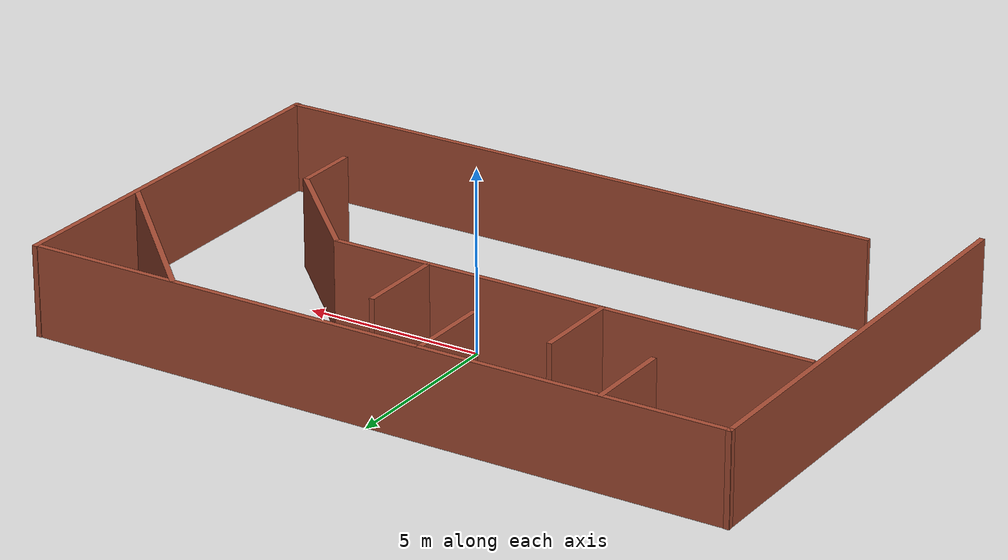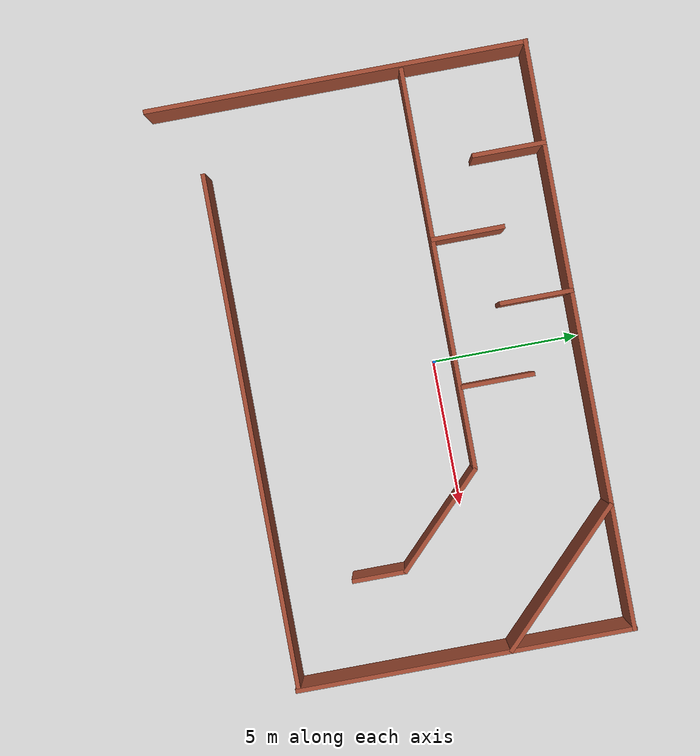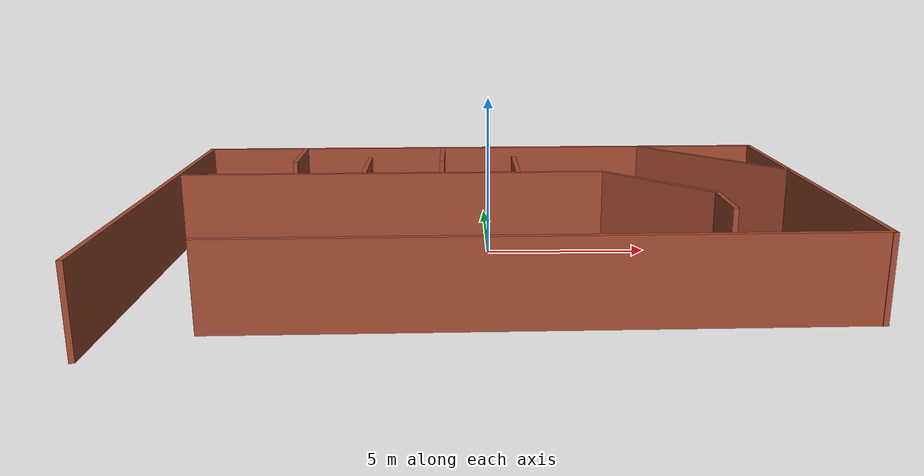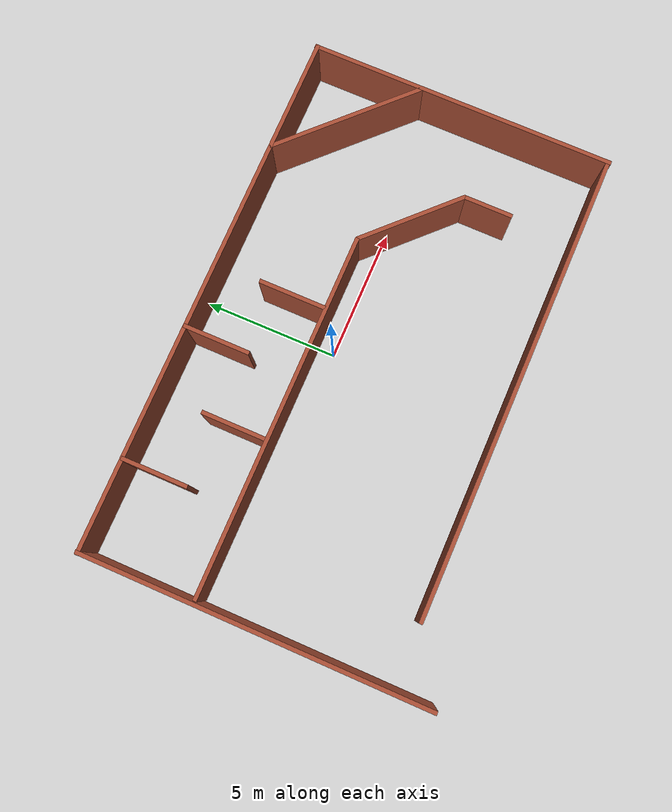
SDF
<?xml version='1.0'?>
<sdf version='1.6'>
  <model name='arena_walls'>
    <link name='Wall_10'>
      <pose frame=''>-6.5 3.71248 0 0 0 -1.5708</pose>
      <inertial>
        <mass>1</mass>
        <pose frame=''>0 0 0 0 -0 0</pose>
        <inertia>
          <ixx>1</ixx>
          <ixy>0</ixy>
          <ixz>0</ixz>
          <iyy>1</iyy>
          <iyz>0</iyz>
          <izz>1</izz>
        </inertia>
      </inertial>
      <self_collide>0</self_collide>
      <kinematic>0</kinematic>
      <gravity>1</gravity>
      <visual name='Wall_10_Visual'>
        <pose frame=''>0 0 1.25 0 -0 0</pose>
        <geometry>
          <box>
            <size>2.5 0.15 2.5</size>
          </box>
        </geometry>
        <material>
          <script>
            <uri>file://media/materials/scripts/gazebo.material</uri>
            <name>Gazebo/Bricks</name>
          </script>
          <ambient>1 1 1 1</ambient>
          <shader type='pixel'>
            <normal_map>__default__</normal_map>
          </shader>
          <diffuse>1 1 1 1</diffuse>
          <specular>0.2 0.2 0.2 1</specular>
          <emissive>0 0 0 1</emissive>
        </material>
        <meta>
          <layer>0</layer>
        </meta>
        <transparency>0</transparency>
        <cast_shadows>1</cast_shadows>
      </visual>
      <collision name='Wall_10_Collision'>
        <laser_retro>0</laser_retro>
        <max_contacts>10</max_contacts>
        <pose frame=''>0 0 1.25 0 -0 0</pose>
        <geometry>
          <box>
            <size>2.5 0.15 2.5</size>
          </box>
        </geometry>
        <surface>
          <friction>
            <ode>
              <mu>1</mu>
              <mu2>1</mu2>
              <fdir1>0 0 0</fdir1>
              <slip1>0</slip1>
              <slip2>0</slip2>
            </ode>
            <torsional>
              <coefficient>1</coefficient>
              <patch_radius>0</patch_radius>
              <surface_radius>0</surface_radius>
              <use_patch_radius>1</use_patch_radius>
              <ode>
                <slip>0</slip>
              </ode>
            </torsional>
          </friction>
          <bounce>
            <restitution_coefficient>0</restitution_coefficient>
            <threshold>1e+06</threshold>
          </bounce>
          <contact>
            <collide_without_contact>0</collide_without_contact>
            <collide_without_contact_bitmask>1</collide_without_contact_bitmask>
            <collide_bitmask>1</collide_bitmask>
            <ode>
              <soft_cfm>0</soft_cfm>
              <soft_erp>0.2</soft_erp>
              <kp>1e+13</kp>
              <kd>1</kd>
              <max_vel>0.01</max_vel>
              <min_depth>0</min_depth>
            </ode>
            <bullet>
              <split_impulse>1</split_impulse>
              <split_impulse_penetration_threshold>-0.01</split_impulse_penetration_threshold>
              <soft_cfm>0</soft_cfm>
              <soft_erp>0.2</soft_erp>
              <kp>1e+13</kp>
              <kd>1</kd>
            </bullet>
          </contact>
        </surface>
      </collision>
    </link>
    <link name='Wall_10_clone_0'>
      <pose frame=''>-1.5 3.70851 0 0 0 -1.5708</pose>
      <inertial>
        <mass>1</mass>
        <pose frame=''>0 0 0 0 -0 0</pose>
        <inertia>
          <ixx>1</ixx>
          <ixy>0</ixy>
          <ixz>0</ixz>
          <iyy>1</iyy>
          <iyz>0</iyz>
          <izz>1</izz>
        </inertia>
      </inertial>
      <self_collide>0</self_collide>
      <kinematic>0</kinematic>
      <gravity>1</gravity>
      <visual name='Wall_10_Visual'>
        <pose frame=''>0 0 1.25 0 -0 0</pose>
        <geometry>
          <box>
            <size>2.5 0.15 2.5</size>
          </box>
        </geometry>
        <material>
          <script>
            <uri>file://media/materials/scripts/gazebo.material</uri>
            <name>Gazebo/Bricks</name>
          </script>
          <ambient>1 1 1 1</ambient>
          <shader type='pixel'>
            <normal_map>__default__</normal_map>
          </shader>
          <diffuse>1 1 1 1</diffuse>
          <specular>0.2 0.2 0.2 1</specular>
          <emissive>0 0 0 1</emissive>
        </material>
        <meta>
          <layer>0</layer>
        </meta>
        <transparency>0</transparency>
        <cast_shadows>1</cast_shadows>
      </visual>
      <collision name='Wall_10_Collision'>
        <laser_retro>0</laser_retro>
        <max_contacts>10</max_contacts>
        <pose frame=''>0 0 1.25 0 -0 0</pose>
        <geometry>
          <box>
            <size>2.5 0.15 2.5</size>
          </box>
        </geometry>
        <surface>
          <friction>
            <ode>
              <mu>1</mu>
              <mu2>1</mu2>
              <fdir1>0 0 0</fdir1>
              <slip1>0</slip1>
              <slip2>0</slip2>
            </ode>
            <torsional>
              <coefficient>1</coefficient>
              <patch_radius>0</patch_radius>
              <surface_radius>0</surface_radius>
              <use_patch_radius>1</use_patch_radius>
              <ode>
                <slip>0</slip>
              </ode>
            </torsional>
          </friction>
          <bounce>
            <restitution_coefficient>0</restitution_coefficient>
            <threshold>1e+06</threshold>
          </bounce>
          <contact>
            <collide_without_contact>0</collide_without_contact>
            <collide_without_contact_bitmask>1</collide_without_contact_bitmask>
            <collide_bitmask>1</collide_bitmask>
            <ode>
              <soft_cfm>0</soft_cfm>
              <soft_erp>0.2</soft_erp>
              <kp>1e+13</kp>
              <kd>1</kd>
              <max_vel>0.01</max_vel>
              <min_depth>0</min_depth>
            </ode>
            <bullet>
              <split_impulse>1</split_impulse>
              <split_impulse_penetration_threshold>-0.01</split_impulse_penetration_threshold>
              <soft_cfm>0</soft_cfm>
              <soft_erp>0.2</soft_erp>
              <kp>1e+13</kp>
              <kd>1</kd>
            </bullet>
          </contact>
        </surface>
      </collision>
    </link>
    <link name='Wall_10_clone_0_clone'>
      <pose frame=''>-4 1.85792 0 0 0 -1.5708</pose>
      <inertial>
        <mass>1</mass>
        <pose frame=''>0 0 0 0 -0 0</pose>
        <inertia>
          <ixx>1</ixx>
          <ixy>0</ixy>
          <ixz>0</ixz>
          <iyy>1</iyy>
          <iyz>0</iyz>
          <izz>1</izz>
        </inertia>
      </inertial>
      <self_collide>0</self_collide>
      <kinematic>0</kinematic>
      <gravity>1</gravity>
      <visual name='Wall_10_Visual'>
        <pose frame=''>0 0 1.25 0 -0 0</pose>
        <geometry>
          <box>
            <size>2.5 0.15 2.5</size>
          </box>
        </geometry>
        <material>
          <script>
            <uri>file://media/materials/scripts/gazebo.material</uri>
            <name>Gazebo/Bricks</name>
          </script>
          <ambient>1 1 1 1</ambient>
          <shader type='pixel'>
            <normal_map>__default__</normal_map>
          </shader>
          <diffuse>1 1 1 1</diffuse>
          <specular>0.2 0.2 0.2 1</specular>
          <emissive>0 0 0 1</emissive>
        </material>
        <meta>
          <layer>0</layer>
        </meta>
        <transparency>0</transparency>
        <cast_shadows>1</cast_shadows>
      </visual>
      <collision name='Wall_10_Collision'>
        <laser_retro>0</laser_retro>
        <max_contacts>10</max_contacts>
        <pose frame=''>0 0 1.25 0 -0 0</pose>
        <geometry>
          <box>
            <size>2.5 0.15 2.5</size>
          </box>
        </geometry>
        <surface>
          <friction>
            <ode>
              <mu>1</mu>
              <mu2>1</mu2>
              <fdir1>0 0 0</fdir1>
              <slip1>0</slip1>
              <slip2>0</slip2>
            </ode>
            <torsional>
              <coefficient>1</coefficient>
              <patch_radius>0</patch_radius>
              <surface_radius>0</surface_radius>
              <use_patch_radius>1</use_patch_radius>
              <ode>
                <slip>0</slip>
              </ode>
            </torsional>
          </friction>
          <bounce>
            <restitution_coefficient>0</restitution_coefficient>
            <threshold>1e+06</threshold>
          </bounce>
          <contact>
            <collide_without_contact>0</collide_without_contact>
            <collide_without_contact_bitmask>1</collide_without_contact_bitmask>
            <collide_bitmask>1</collide_bitmask>
            <ode>
              <soft_cfm>0</soft_cfm>
              <soft_erp>0.2</soft_erp>
              <kp>1e+13</kp>
              <kd>1</kd>
              <max_vel>0.01</max_vel>
              <min_depth>0</min_depth>
            </ode>
            <bullet>
              <split_impulse>1</split_impulse>
              <split_impulse_penetration_threshold>-0.01</split_impulse_penetration_threshold>
              <soft_cfm>0</soft_cfm>
              <soft_erp>0.2</soft_erp>
              <kp>1e+13</kp>
              <kd>1</kd>
            </bullet>
          </contact>
        </surface>
      </collision>
    </link>
    <link name='Wall_10_clone_0_clone_0'>
      <pose frame=''>6.67975 -3.13907 0 0 0 -1.5708</pose>
      <inertial>
        <inertia>
          <ixx>0</ixx>
          <ixy>0</ixy>
          <ixz>0</ixz>
          <iyy>0</iyy>
          <iyz>0</iyz>
          <izz>0</izz>
        </inertia>
        <mass>0</mass>
        <pose frame=''>0 0 0 0 -0 0</pose>
      </inertial>
      <self_collide>0</self_collide>
      <kinematic>0</kinematic>
      <gravity>1</gravity>
      <visual name='Wall_10_Visual'>
        <pose frame=''>0 0 1.25 0 -0 0</pose>
        <geometry>
          <box>
            <size>1.8 0.15 2.5</size>
          </box>
        </geometry>
        <material>
          <script>
            <uri>file://media/materials/scripts/gazebo.material</uri>
            <name>Gazebo/Bricks</name>
          </script>
          <ambient>1 1 1 1</ambient>
          <shader type='pixel'>
            <normal_map>__default__</normal_map>
          </shader>
          <diffuse>1 1 1 1</diffuse>
          <specular>0.2 0.2 0.2 1</specular>
          <emissive>0 0 0 1</emissive>
        </material>
        <meta>
          <layer>0</layer>
        </meta>
        <transparency>0</transparency>
        <cast_shadows>1</cast_shadows>
      </visual>
      <collision name='Wall_10_Collision'>
        <laser_retro>0</laser_retro>
        <max_contacts>10</max_contacts>
        <pose frame=''>0 0 1.25 0 -0 0</pose>
        <geometry>
          <box>
            <size>1.65232 0.15 2.5</size>
          </box>
        </geometry>
        <surface>
          <friction>
            <ode>
              <mu>1</mu>
              <mu2>1</mu2>
              <fdir1>0 0 0</fdir1>
              <slip1>0</slip1>
              <slip2>0</slip2>
            </ode>
            <torsional>
              <coefficient>1</coefficient>
              <patch_radius>0</patch_radius>
              <surface_radius>0</surface_radius>
              <use_patch_radius>1</use_patch_radius>
              <ode>
                <slip>0</slip>
              </ode>
            </torsional>
          </friction>
          <bounce>
            <restitution_coefficient>0</restitution_coefficient>
            <threshold>1e+06</threshold>
          </bounce>
          <contact>
            <collide_without_contact>0</collide_without_contact>
            <collide_without_contact_bitmask>1</collide_without_contact_bitmask>
            <collide_bitmask>1</collide_bitmask>
            <ode>
              <soft_cfm>0</soft_cfm>
              <soft_erp>0.2</soft_erp>
              <kp>1e+13</kp>
              <kd>1</kd>
              <max_vel>0.01</max_vel>
              <min_depth>0</min_depth>
            </ode>
            <bullet>
              <split_impulse>1</split_impulse>
              <split_impulse_penetration_threshold>-0.01</split_impulse_penetration_threshold>
              <soft_cfm>0</soft_cfm>
              <soft_erp>0.2</soft_erp>
              <kp>1e+13</kp>
              <kd>1</kd>
            </bullet>
          </contact>
        </surface>
      </collision>
    </link>
    <link name='Wall_10_clone_0_clone_2'>
      <pose frame=''>1 1.94635 0 0 0 -1.5708</pose>
      <inertial>
        <mass>1</mass>
        <pose frame=''>0 0 0 0 -0 0</pose>
        <inertia>
          <ixx>1</ixx>
          <ixy>0</ixy>
          <ixz>0</ixz>
          <iyy>1</iyy>
          <iyz>0</iyz>
          <izz>1</izz>
        </inertia>
      </inertial>
      <self_collide>0</self_collide>
      <kinematic>0</kinematic>
      <gravity>1</gravity>
      <visual name='Wall_10_Visual'>
        <pose frame=''>0 0 1.25 0 -0 0</pose>
        <geometry>
          <box>
            <size>2.5 0.15 2.5</size>
          </box>
        </geometry>
        <material>
          <script>
            <uri>file://media/materials/scripts/gazebo.material</uri>
            <name>Gazebo/Bricks</name>
          </script>
          <ambient>1 1 1 1</ambient>
          <shader type='pixel'>
            <normal_map>__default__</normal_map>
          </shader>
          <diffuse>1 1 1 1</diffuse>
          <specular>0.2 0.2 0.2 1</specular>
          <emissive>0 0 0 1</emissive>
        </material>
        <meta>
          <layer>0</layer>
        </meta>
        <transparency>0</transparency>
        <cast_shadows>1</cast_shadows>
      </visual>
      <collision name='Wall_10_Collision'>
        <laser_retro>0</laser_retro>
        <max_contacts>10</max_contacts>
        <pose frame=''>0 0 1.25 0 -0 0</pose>
        <geometry>
          <box>
            <size>2.5 0.15 2.5</size>
          </box>
        </geometry>
        <surface>
          <friction>
            <ode>
              <mu>1</mu>
              <mu2>1</mu2>
              <fdir1>0 0 0</fdir1>
              <slip1>0</slip1>
              <slip2>0</slip2>
            </ode>
            <torsional>
              <coefficient>1</coefficient>
              <patch_radius>0</patch_radius>
              <surface_radius>0</surface_radius>
              <use_patch_radius>1</use_patch_radius>
              <ode>
                <slip>0</slip>
              </ode>
            </torsional>
          </friction>
          <bounce>
            <restitution_coefficient>0</restitution_coefficient>
            <threshold>1e+06</threshold>
          </bounce>
          <contact>
            <collide_without_contact>0</collide_without_contact>
            <collide_without_contact_bitmask>1</collide_without_contact_bitmask>
            <collide_bitmask>1</collide_bitmask>
            <ode>
              <soft_cfm>0</soft_cfm>
              <soft_erp>0.2</soft_erp>
              <kp>1e+13</kp>
              <kd>1</kd>
              <max_vel>0.01</max_vel>
              <min_depth>0</min_depth>
            </ode>
            <bullet>
              <split_impulse>1</split_impulse>
              <split_impulse_penetration_threshold>-0.01</split_impulse_penetration_threshold>
              <soft_cfm>0</soft_cfm>
              <soft_erp>0.2</soft_erp>
              <kp>1e+13</kp>
              <kd>1</kd>
            </bullet>
          </contact>
        </surface>
      </collision>
    </link>
    <link name='Wall_10_clone_0_clone_2_clone'>
      <pose frame=''>7.82658 2.81474 0 0 0 -0.78</pose>
      <inertial>
        <mass>2.38801</mass>
        <pose frame=''>0 0 0 0 -0 0</pose>
        <inertia>
          <ixx>1.24823</ixx>
          <ixy>0</ixy>
          <ixz>0</ixz>
          <iyy>8.33641</iyy>
          <iyz>0</iyz>
          <izz>7.09713</izz>
        </inertia>
      </inertial>
      <self_collide>0</self_collide>
      <kinematic>0</kinematic>
      <gravity>1</gravity>
      <visual name='Wall_10_Visual'>
        <pose frame=''>0 0 1.25 0 -0 0</pose>
        <geometry>
          <box>
            <size>5.97003 0.15 2.5</size>
          </box>
        </geometry>
        <material>
          <script>
            <uri>file://media/materials/scripts/gazebo.material</uri>
            <name>Gazebo/Bricks</name>
          </script>
          <ambient>1 1 1 1</ambient>
          <shader type='pixel'>
            <normal_map>__default__</normal_map>
          </shader>
          <diffuse>1 1 1 1</diffuse>
          <specular>0.2 0.2 0.2 1</specular>
          <emissive>0 0 0 1</emissive>
        </material>
        <meta>
          <layer>0</layer>
        </meta>
        <transparency>0</transparency>
        <cast_shadows>1</cast_shadows>
      </visual>
      <collision name='Wall_10_Collision'>
        <laser_retro>0</laser_retro>
        <max_contacts>10</max_contacts>
        <pose frame=''>0 0 1.25 0 -0 0</pose>
        <geometry>
          <box>
            <size>5.97003 0.15 2.5</size>
          </box>
        </geometry>
        <surface>
          <friction>
            <ode>
              <mu>1</mu>
              <mu2>1</mu2>
              <fdir1>0 0 0</fdir1>
              <slip1>0</slip1>
              <slip2>0</slip2>
            </ode>
            <torsional>
              <coefficient>1</coefficient>
              <patch_radius>0</patch_radius>
              <surface_radius>0</surface_radius>
              <use_patch_radius>1</use_patch_radius>
              <ode>
                <slip>0</slip>
              </ode>
            </torsional>
          </friction>
          <bounce>
            <restitution_coefficient>0</restitution_coefficient>
            <threshold>1e+06</threshold>
          </bounce>
          <contact>
            <collide_without_contact>0</collide_without_contact>
            <collide_without_contact_bitmask>1</collide_without_contact_bitmask>
            <collide_bitmask>1</collide_bitmask>
            <ode>
              <soft_cfm>0</soft_cfm>
              <soft_erp>0.2</soft_erp>
              <kp>1e+13</kp>
              <kd>1</kd>
              <max_vel>0.01</max_vel>
              <min_depth>0</min_depth>
            </ode>
            <bullet>
              <split_impulse>1</split_impulse>
              <split_impulse_penetration_threshold>-0.01</split_impulse_penetration_threshold>
              <soft_cfm>0</soft_cfm>
              <soft_erp>0.2</soft_erp>
              <kp>1e+13</kp>
              <kd>1</kd>
            </bullet>
          </contact>
        </surface>
      </collision>
    </link>
    <link name='Wall_10_clone_0_clone_2_clone_clone'>
      <pose frame=''>5.22604 -0.784406 0 0 0 -0.78</pose>
      <inertial>
        <mass>1.67623</mass>
        <pose frame=''>0 0 0 0 -0 0</pose>
        <inertia>
          <ixx>0.876179</ixx>
          <ixy>0</ixy>
          <ixz>0</ixz>
          <iyy>3.32605</iyy>
          <iyz>0</iyz>
          <izz>2.45615</izz>
        </inertia>
      </inertial>
      <self_collide>0</self_collide>
      <kinematic>0</kinematic>
      <visual name='Wall_10_Visual'>
        <pose frame=''>0 0 1.25 0 -0 0</pose>
        <geometry>
          <box>
            <size>4.19058 0.15 2.5</size>
          </box>
        </geometry>
        <material>
          <script>
            <uri>file://media/materials/scripts/gazebo.material</uri>
            <name>Gazebo/Bricks</name>
          </script>
          <ambient>1 1 1 1</ambient>
          <shader type='pixel'>
            <normal_map>__default__</normal_map>
          </shader>
          <diffuse>1 1 1 1</diffuse>
          <specular>0.2 0.2 0.2 1</specular>
          <emissive>0 0 0 1</emissive>
        </material>
        <meta>
          <layer>0</layer>
        </meta>
        <transparency>0</transparency>
        <cast_shadows>1</cast_shadows>
      </visual>
      <collision name='Wall_10_Collision'>
        <laser_retro>0</laser_retro>
        <max_contacts>10</max_contacts>
        <pose frame=''>0 0 1.25 0 -0 0</pose>
        <geometry>
          <box>
            <size>4.19058 0.15 2.5</size>
          </box>
        </geometry>
        <surface>
          <friction>
            <ode>
              <mu>1</mu>
              <mu2>1</mu2>
              <fdir1>0 0 0</fdir1>
              <slip1>0</slip1>
              <slip2>0</slip2>
            </ode>
            <torsional>
              <coefficient>1</coefficient>
              <patch_radius>0</patch_radius>
              <surface_radius>0</surface_radius>
              <use_patch_radius>1</use_patch_radius>
              <ode>
                <slip>0</slip>
              </ode>
            </torsional>
          </friction>
          <bounce>
            <restitution_coefficient>0</restitution_coefficient>
            <threshold>1e+06</threshold>
          </bounce>
          <contact>
            <collide_without_contact>0</collide_without_contact>
            <collide_without_contact_bitmask>1</collide_without_contact_bitmask>
            <collide_bitmask>1</collide_bitmask>
            <ode>
              <soft_cfm>0</soft_cfm>
              <soft_erp>0.2</soft_erp>
              <kp>1e+13</kp>
              <kd>1</kd>
              <max_vel>0.01</max_vel>
              <min_depth>0</min_depth>
            </ode>
            <bullet>
              <split_impulse>1</split_impulse>
              <split_impulse_penetration_threshold>-0.01</split_impulse_penetration_threshold>
              <soft_cfm>0</soft_cfm>
              <soft_erp>0.2</soft_erp>
              <kp>1e+13</kp>
              <kd>1</kd>
            </bullet>
          </contact>
        </surface>
      </collision>
    </link>
    <link name='Wall_13'>
      <pose frame=''>-3.01008 0.669302 0 0 -0 3.14159</pose>
      <inertial>
        <mass>1.35897</mass>
        <pose frame=''>0 0 0 0 -0 0</pose>
        <inertia>
          <ixx>0.710346</ixx>
          <ixy>0</ixy>
          <ixz>0</ixz>
          <iyy>21.6225</iyy>
          <iyz>0</iyz>
          <izz>20.9172</izz>
        </inertia>
      </inertial>
      <self_collide>0</self_collide>
      <kinematic>0</kinematic>
      <visual name='Wall_13_Visual'>
        <pose frame=''>0 0 1.25 0 -0 0</pose>
        <geometry>
          <box>
            <size>13.5897 0.15 2.5</size>
          </box>
        </geometry>
        <material>
          <script>
            <uri>file://media/materials/scripts/gazebo.material</uri>
            <name>Gazebo/Bricks</name>
          </script>
          <ambient>1 1 1 1</ambient>
          <shader type='pixel'>
            <normal_map>__default__</normal_map>
          </shader>
          <diffuse>1 1 1 1</diffuse>
          <specular>0.2 0.2 0.2 1</specular>
          <emissive>0 0 0 1</emissive>
        </material>
        <meta>
          <layer>0</layer>
        </meta>
        <transparency>0</transparency>
        <cast_shadows>1</cast_shadows>
      </visual>
      <collision name='Wall_13_Collision'>
        <laser_retro>0</laser_retro>
        <max_contacts>10</max_contacts>
        <pose frame=''>0 0 1.25 0 -0 0</pose>
        <geometry>
          <box>
            <size>13.5897 0.15 2.5</size>
          </box>
        </geometry>
        <surface>
          <friction>
            <ode>
              <mu>1</mu>
              <mu2>1</mu2>
              <fdir1>0 0 0</fdir1>
              <slip1>0</slip1>
              <slip2>0</slip2>
            </ode>
            <torsional>
              <coefficient>1</coefficient>
              <patch_radius>0</patch_radius>
              <surface_radius>0</surface_radius>
              <use_patch_radius>1</use_patch_radius>
              <ode>
                <slip>0</slip>
              </ode>
            </torsional>
          </friction>
          <bounce>
            <restitution_coefficient>0</restitution_coefficient>
            <threshold>1e+06</threshold>
          </bounce>
          <contact>
            <collide_without_contact>0</collide_without_contact>
            <collide_without_contact_bitmask>1</collide_without_contact_bitmask>
            <collide_bitmask>1</collide_bitmask>
            <ode>
              <soft_cfm>0</soft_cfm>
              <soft_erp>0.2</soft_erp>
              <kp>1e+13</kp>
              <kd>1</kd>
              <max_vel>0.01</max_vel>
              <min_depth>0</min_depth>
            </ode>
            <bullet>
              <split_impulse>1</split_impulse>
              <split_impulse_penetration_threshold>-0.01</split_impulse_penetration_threshold>
              <soft_cfm>0</soft_cfm>
              <soft_erp>0.2</soft_erp>
              <kp>1e+13</kp>
              <kd>1</kd>
            </bullet>
          </contact>
        </surface>
      </collision>
    </link>
    <link name='Wall_2'>
      <pose frame=''>0.003794 4.89766 0 0 -0 0</pose>
      <self_collide>0</self_collide>
      <kinematic>0</kinematic>
      <visual name='Wall_2_Visual'>
        <pose frame=''>0 0 1.25 0 -0 0</pose>
        <geometry>
          <box>
            <size>20 0.15 2.5</size>
          </box>
        </geometry>
        <material>
          <script>
            <uri>file://media/materials/scripts/gazebo.material</uri>
            <name>Gazebo/Bricks</name>
          </script>
          <ambient>1 1 1 1</ambient>
          <shader type='pixel'/>
          <diffuse>1 1 1 1</diffuse>
          <specular>0.2 0.2 0.2 1</specular>
          <emissive>0 0 0 1</emissive>
        </material>
        <meta>
          <layer>0</layer>
        </meta>
        <transparency>0</transparency>
        <cast_shadows>1</cast_shadows>
      </visual>
      <collision name='Wall_2_Collision'>
        <laser_retro>0</laser_retro>
        <max_contacts>10</max_contacts>
        <pose frame=''>0 0 1.25 0 -0 0</pose>
        <geometry>
          <box>
            <size>20 0.15 2.5</size>
          </box>
        </geometry>
        <surface>
          <friction>
            <ode>
              <mu>1</mu>
              <mu2>1</mu2>
              <fdir1>0 0 0</fdir1>
              <slip1>0</slip1>
              <slip2>0</slip2>
            </ode>
            <torsional>
              <coefficient>1</coefficient>
              <patch_radius>0</patch_radius>
              <surface_radius>0</surface_radius>
              <use_patch_radius>1</use_patch_radius>
              <ode>
                <slip>0</slip>
              </ode>
            </torsional>
          </friction>
          <bounce>
            <restitution_coefficient>0</restitution_coefficient>
            <threshold>1e+06</threshold>
          </bounce>
          <contact>
            <collide_without_contact>0</collide_without_contact>
            <collide_without_contact_bitmask>1</collide_without_contact_bitmask>
            <collide_bitmask>1</collide_bitmask>
            <ode>
              <soft_cfm>0</soft_cfm>
              <soft_erp>0.2</soft_erp>
              <kp>1e+13</kp>
              <kd>1</kd>
              <max_vel>0.01</max_vel>
              <min_depth>0</min_depth>
            </ode>
            <bullet>
              <split_impulse>1</split_impulse>
              <split_impulse_penetration_threshold>-0.01</split_impulse_penetration_threshold>
              <soft_cfm>0</soft_cfm>
              <soft_erp>0.2</soft_erp>
              <kp>1e+13</kp>
              <kd>1</kd>
            </bullet>
          </contact>
        </surface>
      </collision>
    </link>
    <link name='Wall_4'>
      <pose frame=''>9.925 -0.776884 0 0 0 -1.5708</pose>
      <self_collide>0</self_collide>
      <kinematic>0</kinematic>
      <inertial>
        <inertia>
          <ixx>0</ixx>
          <ixy>0</ixy>
          <ixz>0</ixz>
          <iyy>0</iyy>
          <iyz>0</iyz>
          <izz>0</izz>
        </inertia>
        <mass>0</mass>
        <pose frame=''>0 0 0 0 -0 0</pose>
      </inertial>
      <visual name='Wall_4_Visual'>
        <pose frame=''>0 0 1.25 0 -0 0</pose>
        <geometry>
          <box>
            <size>11.5415 0.15 2.5</size>
          </box>
        </geometry>
        <material>
          <script>
            <uri>file://media/materials/scripts/gazebo.material</uri>
            <name>Gazebo/Bricks</name>
          </script>
          <ambient>1 1 1 1</ambient>
          <shader type='pixel'/>
          <diffuse>1 1 1 1</diffuse>
          <specular>0.2 0.2 0.2 1</specular>
          <emissive>0 0 0 1</emissive>
        </material>
        <meta>
          <layer>0</layer>
        </meta>
        <transparency>0</transparency>
        <cast_shadows>1</cast_shadows>
      </visual>
      <collision name='Wall_4_Collision'>
        <laser_retro>0</laser_retro>
        <max_contacts>10</max_contacts>
        <pose frame=''>0 0 1.25 0 -0 0</pose>
        <geometry>
          <box>
            <size>11.5415 0.15 2.5</size>
          </box>
        </geometry>
        <surface>
          <friction>
            <ode>
              <mu>1</mu>
              <mu2>1</mu2>
              <fdir1>0 0 0</fdir1>
              <slip1>0</slip1>
              <slip2>0</slip2>
            </ode>
            <torsional>
              <coefficient>1</coefficient>
              <patch_radius>0</patch_radius>
              <surface_radius>0</surface_radius>
              <use_patch_radius>1</use_patch_radius>
              <ode>
                <slip>0</slip>
              </ode>
            </torsional>
          </friction>
          <bounce>
            <restitution_coefficient>0</restitution_coefficient>
            <threshold>1e+06</threshold>
          </bounce>
          <contact>
            <collide_without_contact>0</collide_without_contact>
            <collide_without_contact_bitmask>1</collide_without_contact_bitmask>
            <collide_bitmask>1</collide_bitmask>
            <ode>
              <soft_cfm>0</soft_cfm>
              <soft_erp>0.2</soft_erp>
              <kp>1e+13</kp>
              <kd>1</kd>
              <max_vel>0.01</max_vel>
              <min_depth>0</min_depth>
            </ode>
            <bullet>
              <split_impulse>1</split_impulse>
              <split_impulse_penetration_threshold>-0.01</split_impulse_penetration_threshold>
              <soft_cfm>0</soft_cfm>
              <soft_erp>0.2</soft_erp>
              <kp>1e+13</kp>
              <kd>1</kd>
            </bullet>
          </contact>
        </surface>
      </collision>
    </link>
    <link name='Wall_6'>
      <pose frame=''>-9.9146 -1.51392 0 0 0 -1.5708</pose>
      <inertial>
        <mass>1</mass>
        <pose frame=''>0 0 0 0 -0 0</pose>
        <inertia>
          <ixx>1</ixx>
          <ixy>0</ixy>
          <ixz>0</ixz>
          <iyy>1</iyy>
          <iyz>0</iyz>
          <izz>1</izz>
        </inertia>
      </inertial>
      <self_collide>0</self_collide>
      <kinematic>0</kinematic>
      <visual name='Wall_6_Visual'>
        <pose frame=''>0 0 1.25 0 -0 0</pose>
        <geometry>
          <box>
            <size>13 0.15 2.5</size>
          </box>
        </geometry>
        <material>
          <script>
            <uri>file://media/materials/scripts/gazebo.material</uri>
            <name>Gazebo/Bricks</name>
          </script>
          <ambient>1 1 1 1</ambient>
          <shader type='pixel'>
            <normal_map>__default__</normal_map>
          </shader>
          <diffuse>1 1 1 1</diffuse>
          <specular>0.2 0.2 0.2 1</specular>
          <emissive>0 0 0 1</emissive>
        </material>
        <meta>
          <layer>0</layer>
        </meta>
        <transparency>0</transparency>
        <cast_shadows>1</cast_shadows>
      </visual>
      <collision name='Wall_6_Collision'>
        <laser_retro>0</laser_retro>
        <max_contacts>10</max_contacts>
        <pose frame=''>0 0 1.25 0 -0 0</pose>
        <geometry>
          <box>
            <size>10 0.15 2.5</size>
          </box>
        </geometry>
        <surface>
          <friction>
            <ode>
              <mu>1</mu>
              <mu2>1</mu2>
              <fdir1>0 0 0</fdir1>
              <slip1>0</slip1>
              <slip2>0</slip2>
            </ode>
            <torsional>
              <coefficient>1</coefficient>
              <patch_radius>0</patch_radius>
              <surface_radius>0</surface_radius>
              <use_patch_radius>1</use_patch_radius>
              <ode>
                <slip>0</slip>
              </ode>
            </torsional>
          </friction>
          <bounce>
            <restitution_coefficient>0</restitution_coefficient>
            <threshold>1e+06</threshold>
          </bounce>
          <contact>
            <collide_without_contact>0</collide_without_contact>
            <collide_without_contact_bitmask>1</collide_without_contact_bitmask>
            <collide_bitmask>1</collide_bitmask>
            <ode>
              <soft_cfm>0</soft_cfm>
              <soft_erp>0.2</soft_erp>
              <kp>1e+13</kp>
              <kd>1</kd>
              <max_vel>0.01</max_vel>
              <min_depth>0</min_depth>
            </ode>
            <bullet>
              <split_impulse>1</split_impulse>
              <split_impulse_penetration_threshold>-0.01</split_impulse_penetration_threshold>
              <soft_cfm>0</soft_cfm>
              <soft_erp>0.2</soft_erp>
              <kp>1e+13</kp>
              <kd>1</kd>
            </bullet>
          </contact>
        </surface>
      </collision>
    </link>
    <link name='Wall_8'>
      <pose frame=''>1.20941 -6.4401 0 0 -0 0</pose>
      <self_collide>0</self_collide>
      <kinematic>0</kinematic>
      <gravity>1</gravity>
      <inertial>
        <mass>1</mass>
        <pose frame=''>0 0 0 0 -0 0</pose>
        <inertia>
          <ixx>1</ixx>
          <ixy>0</ixy>
          <ixz>0</ixz>
          <iyy>1</iyy>
          <iyz>0</iyz>
          <izz>1</izz>
        </inertia>
      </inertial>
      <visual name='Wall_8_Visual'>
        <pose frame=''>0 0 1.25 0 -0 0</pose>
        <geometry>
          <box>
            <size>17.5 0.15 2.5</size>
          </box>
        </geometry>
        <material>
          <script>
            <uri>file://media/materials/scripts/gazebo.material</uri>
            <name>Gazebo/Bricks</name>
          </script>
          <ambient>1 1 1 1</ambient>
          <shader type='pixel'>
            <normal_map>__default__</normal_map>
          </shader>
          <diffuse>1 1 1 1</diffuse>
          <specular>0.2 0.2 0.2 1</specular>
          <emissive>0 0 0 1</emissive>
        </material>
        <meta>
          <layer>0</layer>
        </meta>
        <transparency>0</transparency>
        <cast_shadows>1</cast_shadows>
      </visual>
      <collision name='Wall_8_Collision'>
        <laser_retro>0</laser_retro>
        <max_contacts>10</max_contacts>
        <pose frame=''>0 0 1.25 0 -0 0</pose>
        <geometry>
          <box>
            <size>20 0.15 2.5</size>
          </box>
        </geometry>
        <surface>
          <friction>
            <ode>
              <mu>1</mu>
              <mu2>1</mu2>
              <fdir1>0 0 0</fdir1>
              <slip1>0</slip1>
              <slip2>0</slip2>
            </ode>
            <torsional>
              <coefficient>1</coefficient>
              <patch_radius>0</patch_radius>
              <surface_radius>0</surface_radius>
              <use_patch_radius>1</use_patch_radius>
              <ode>
                <slip>0</slip>
              </ode>
            </torsional>
          </friction>
          <bounce>
            <restitution_coefficient>0</restitution_coefficient>
            <threshold>1e+06</threshold>
          </bounce>
          <contact>
            <collide_without_contact>0</collide_without_contact>
            <collide_without_contact_bitmask>1</collide_without_contact_bitmask>
            <collide_bitmask>1</collide_bitmask>
            <ode>
              <soft_cfm>0</soft_cfm>
              <soft_erp>0.2</soft_erp>
              <kp>1e+13</kp>
              <kd>1</kd>
              <max_vel>0.01</max_vel>
              <min_depth>0</min_depth>
            </ode>
            <bullet>
              <split_impulse>1</split_impulse>
              <split_impulse_penetration_threshold>-0.01</split_impulse_penetration_threshold>
              <soft_cfm>0</soft_cfm>
              <soft_erp>0.2</soft_erp>
              <kp>1e+13</kp>
              <kd>1</kd>
            </bullet>
          </contact>
        </surface>
      </collision>
    </link>
    <static>1</static>
    <allow_auto_disable>1</allow_auto_disable>
  </model>
</sdf>
